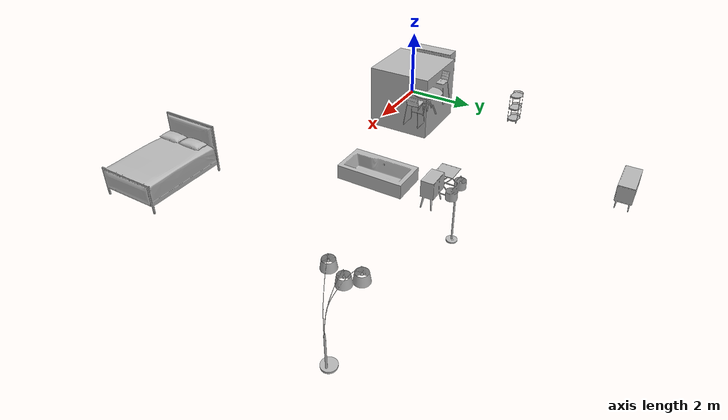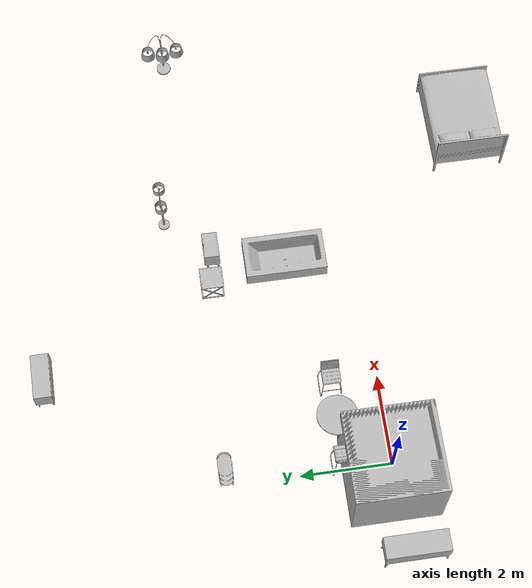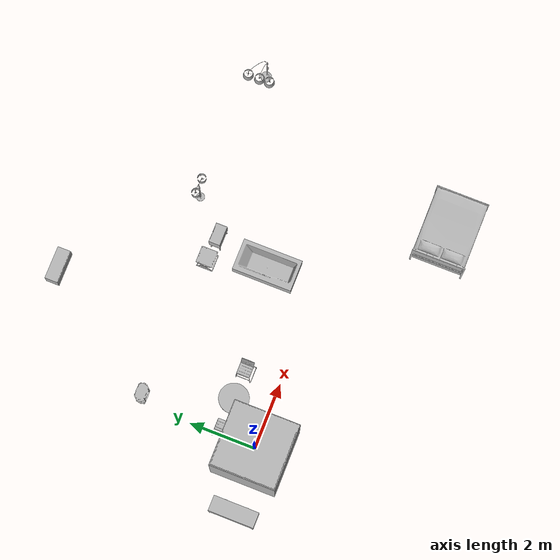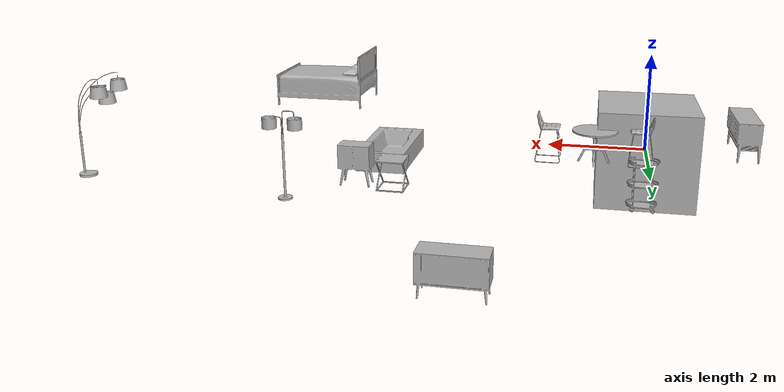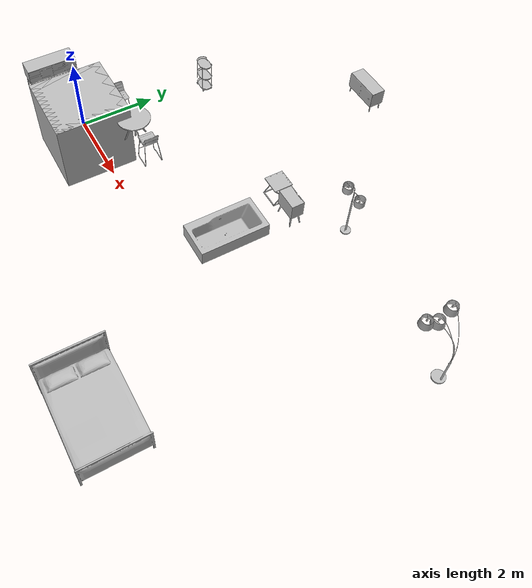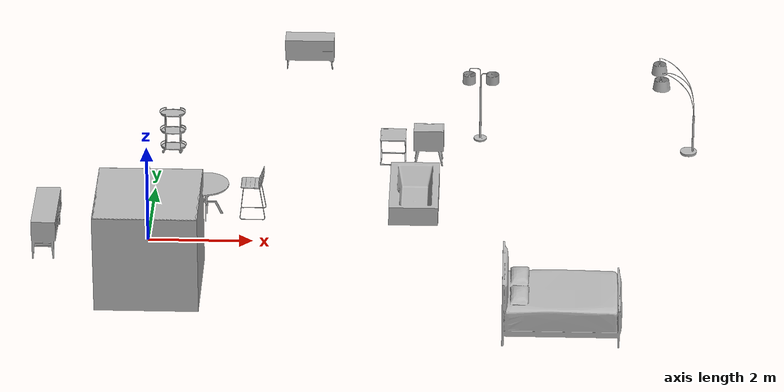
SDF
<sdf version="1.6">
 <world name="generation_yfdsbr0fpx9p_world_20">
  <include><uri>model://sun</uri></include>
  <model name="SofaTables_O1c292176b101_lod0_0">
   <include>
    <uri>model://SofaTables_O1c292176b101_lod0</uri>
    <pose>4.6000000000000005 3.300000044703484 0.0 0.0 0.0 3.14</pose>
    <static>true</static>
   </include>
  </model>
  <model name="AudioVideoMediaCabinets_O6f5c7038fb64_lod0_0">
   <include>
    <uri>model://AudioVideoMediaCabinets_O6f5c7038fb64_lod0</uri>
    <pose>2.799818027019501 7.200050470232964 0.0 0.0 0.0 0.0</pose>
    <static>true</static>
   </include>
  </model>
  <model name="Cabinets_O360d998c89e3_lod0_0">
   <include>
    <uri>model://Cabinets_O360d998c89e3_lod0</uri>
    <pose>5.299970495700837 3.2146625488996508 0.0 0.0 0.0 3.14</pose>
    <static>true</static>
   </include>
  </model>
  <model name="FloorLamps_O79dd699fb3bb_lod0_0">
   <include>
    <uri>model://FloorLamps_O79dd699fb3bb_lod0</uri>
    <pose>6.299955743551255 4.200066190958023 0.0 0.0 0.0 4.71</pose>
    <static>true</static>
   </include>
  </model>
  <model name="ServingCarts_Off3d92b2f4b7_lod0_0">
   <include>
    <uri>model://ServingCarts_Off3d92b2f4b7_lod0</uri>
    <pose>0.24999797344207764 3.550031210482121 0.0 0.0 0.0 3.14</pose>
    <static>true</static>
   </include>
  </model>
  <model name="Sideboards_O42fc94e60381_lod0_0">
   <include>
    <uri>model://Sideboards_O42fc94e60381_lod0</uri>
    <pose>-1.9534011602401735 -0.12918134182691576 0.0 0.0 0.0 1.57</pose>
    <static>true</static>
   </include>
  </model>
  <model name="DiningTables_O8655cfdbca28_lod0_0">
   <include>
    <uri>model://DiningTables_O8655cfdbca28_lod0</uri>
    <pose>1.050000923871994 1.0500000298023224 0.0 0.0 0.0 0.0</pose>
    <static>true</static>
   </include>
  </model>
  <model name="Barstools_Oa4fba5f9c131_lod0_0">
   <include>
    <uri>model://Barstools_Oa4fba5f9c131_lod0</uri>
    <pose>0.15028677284717562 1.0499698400497437 0.0 0.0 0.0 1.5700000000000003</pose>
    <static>true</static>
   </include>
  </model>
  <model name="Barstools_Oa4fba5f9c131_lod0_1">
   <include>
    <uri>model://Barstools_Oa4fba5f9c131_lod0</uri>
    <pose>1.9502867728471758 1.0499698400497437 0.0 0.0 0.0 4.71</pose>
    <static>true</static>
   </include>
  </model>
  <model name="FloorLamps_Oe4c82ba7af6_lod0_0">
   <include>
    <uri>model://FloorLamps_Oe4c82ba7af6_lod0</uri>
    <pose>10.414486372470856 3.7500271543860437 0.0 0.0 0.0 4.71</pose>
    <static>true</static>
   </include>
  </model>
  <model name="BathtubAlcove_fde1f0b038f8_lod0_0">
   <include>
    <uri>model://BathtubAlcove_fde1f0b038f8_lod0</uri>
    <pose>5.051665800809861 1.6024119019508363 0.0 0.0 0.0 1.57</pose>
    <static>true</static>
   </include>
  </model>
  <model name="Headboards_O5d185ed0fce9_lod0_0">
   <include>
    <uri>model://Headboards_O5d185ed0fce9_lod0</uri>
    <pose>7.900017046928406 -2.9477718591690065 0.0 0.0 0.0 1.57</pose>
    <static>true</static>
   </include>
  </model>
  <model name="wall_0">
   <include><uri>model://generation_yfdsbr0fpx9p_world_20/wall_0</uri><static>true</static></include>
  </model>
  <model name="wall_1">
   <include><uri>model://generation_yfdsbr0fpx9p_world_20/wall_1</uri><static>true</static></include>
  </model>
  <model name="wall_10">
   <include><uri>model://generation_yfdsbr0fpx9p_world_20/wall_10</uri><static>true</static></include>
  </model>
  <model name="wall_11">
   <include><uri>model://generation_yfdsbr0fpx9p_world_20/wall_11</uri><static>true</static></include>
  </model>
  <model name="wall_12">
   <include><uri>model://generation_yfdsbr0fpx9p_world_20/wall_12</uri><static>true</static></include>
  </model>
  <model name="wall_13">
   <include><uri>model://generation_yfdsbr0fpx9p_world_20/wall_13</uri><static>true</static></include>
  </model>
  <model name="wall_16">
   <include><uri>model://generation_yfdsbr0fpx9p_world_20/wall_16</uri><static>true</static></include>
  </model>
  <model name="wall_17">
   <include><uri>model://generation_yfdsbr0fpx9p_world_20/wall_17</uri><static>true</static></include>
  </model>
  <model name="floor_My Living Room">
   <include>
    <uri>model://generation_yfdsbr0fpx9p_world_20/floor_My Living Room</uri>
    <static>true</static>
   </include>
  </model>
  <model name="floor_Kitchen">
   <include><uri>model://generation_yfdsbr0fpx9p_world_20/floor_Kitchen</uri><static>true</static></include>
  </model>
  <model name="floor_Dining Room">
   <include><uri>model://generation_yfdsbr0fpx9p_world_20/floor_Dining Room</uri><static>true</static></include>
  </model>
  <model name="floor_Hallway">
   <include><uri>model://generation_yfdsbr0fpx9p_world_20/floor_Hallway</uri><static>true</static></include>
  </model>
  <model name="floor_Guest Bath">
   <include><uri>model://generation_yfdsbr0fpx9p_world_20/floor_Guest Bath</uri><static>true</static></include>
  </model>
  <model name="floor_Bedroom">
   <include><uri>model://generation_yfdsbr0fpx9p_world_20/floor_Bedroom</uri><static>true</static></include>
  </model>
 </world>
</sdf>

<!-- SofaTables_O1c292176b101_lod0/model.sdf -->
<sdf version="1.6">
	<model name="SofaTables_O1c292176b101_lod0">
		<link name="main_link">
			<visual name="visual_RootNode">
				<geometry>
					<mesh>
						<uri>model://SofaTables_O1c292176b101_lod0/meshes/visual_RootNode.dae</uri>
					</mesh>
				</geometry>
			</visual>
			<collision name="collision_RootNode_lod0_0">
				<geometry>
					<mesh>
						<uri>model://SofaTables_O1c292176b101_lod0/meshes/collision_RootNode_lod0_0.dae</uri>
					</mesh>
				</geometry>
			</collision>
		</link>
	</model>
</sdf>

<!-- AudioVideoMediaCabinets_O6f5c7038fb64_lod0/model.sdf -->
<sdf version="1.6">
	<model name="AudioVideoMediaCabinets_O6f5c7038fb64_lod0">
		<link name="main_link">
			<visual name="visual_RootNode">
				<geometry>
					<mesh>
						<uri>model://AudioVideoMediaCabinets_O6f5c7038fb64_lod0/meshes/visual_RootNode.dae</uri>
					</mesh>
				</geometry>
			</visual>
			<collision name="collision_RootNode_lod0_0">
				<geometry>
					<mesh>
						<uri>model://AudioVideoMediaCabinets_O6f5c7038fb64_lod0/meshes/collision_RootNode_lod0_0.dae</uri>
					</mesh>
				</geometry>
			</collision>
		</link>
	</model>
</sdf>

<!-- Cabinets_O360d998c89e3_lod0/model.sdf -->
<sdf version="1.6">
	<model name="Cabinets_O360d998c89e3_lod0">
		<link name="main_link">
			<visual name="visual_RootNode">
				<geometry>
					<mesh>
						<uri>model://Cabinets_O360d998c89e3_lod0/meshes/visual_RootNode.dae</uri>
					</mesh>
				</geometry>
			</visual>
			<collision name="collision_RootNode_lod0_0">
				<geometry>
					<mesh>
						<uri>model://Cabinets_O360d998c89e3_lod0/meshes/collision_RootNode_lod0_0.dae</uri>
					</mesh>
				</geometry>
			</collision>
		</link>
	</model>
</sdf>

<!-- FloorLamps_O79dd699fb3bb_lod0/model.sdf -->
<sdf version="1.6">
	<model name="FloorLamps_O79dd699fb3bb_lod0">
		<link name="main_link">
			<visual name="visual_RootNode">
				<geometry>
					<mesh>
						<uri>model://FloorLamps_O79dd699fb3bb_lod0/meshes/visual_RootNode.dae</uri>
					</mesh>
				</geometry>
			</visual>
			<collision name="collision_RootNode_lod0_0">
				<geometry>
					<mesh>
						<uri>model://FloorLamps_O79dd699fb3bb_lod0/meshes/collision_RootNode_lod0_0.dae</uri>
					</mesh>
				</geometry>
			</collision>
		</link>
	</model>
</sdf>

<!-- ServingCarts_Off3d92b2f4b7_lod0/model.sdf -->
<sdf version="1.6">
	<model name="ServingCarts_Off3d92b2f4b7_lod0">
		<link name="main_link">
			<visual name="visual_RootNode">
				<geometry>
					<mesh>
						<uri>model://ServingCarts_Off3d92b2f4b7_lod0/meshes/visual_RootNode.dae</uri>
					</mesh>
				</geometry>
			</visual>
			<collision name="collision_RootNode_lod0_0">
				<geometry>
					<mesh>
						<uri>model://ServingCarts_Off3d92b2f4b7_lod0/meshes/collision_RootNode_lod0_0.dae</uri>
					</mesh>
				</geometry>
			</collision>
		</link>
	</model>
</sdf>

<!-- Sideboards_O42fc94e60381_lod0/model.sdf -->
<sdf version="1.6">
	<model name="Sideboards_O42fc94e60381_lod0">
		<link name="main_link">
			<visual name="visual_RootNode">
				<geometry>
					<mesh>
						<uri>model://Sideboards_O42fc94e60381_lod0/meshes/visual_RootNode.dae</uri>
					</mesh>
				</geometry>
			</visual>
			<collision name="collision_RootNode_lod0_0">
				<geometry>
					<mesh>
						<uri>model://Sideboards_O42fc94e60381_lod0/meshes/collision_RootNode_lod0_0.dae</uri>
					</mesh>
				</geometry>
			</collision>
		</link>
	</model>
</sdf>

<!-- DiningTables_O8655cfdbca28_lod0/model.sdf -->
<sdf version="1.6">
	<model name="DiningTables_O8655cfdbca28_lod0">
		<link name="main_link">
			<visual name="visual_RootNode">
				<geometry>
					<mesh>
						<uri>model://DiningTables_O8655cfdbca28_lod0/meshes/visual_RootNode.dae</uri>
					</mesh>
				</geometry>
			</visual>
			<collision name="collision_RootNode_lod0_0">
				<geometry>
					<mesh>
						<uri>model://DiningTables_O8655cfdbca28_lod0/meshes/collision_RootNode_lod0_0.dae</uri>
					</mesh>
				</geometry>
			</collision>
		</link>
	</model>
</sdf>

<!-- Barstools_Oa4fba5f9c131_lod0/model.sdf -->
<sdf version="1.6">
	<model name="Barstools_Oa4fba5f9c131_lod0">
		<link name="main_link">
			<visual name="visual_RootNode">
				<geometry>
					<mesh>
						<uri>model://Barstools_Oa4fba5f9c131_lod0/meshes/visual_RootNode.dae</uri>
					</mesh>
				</geometry>
			</visual>
			<collision name="collision_RootNode_lod0_0">
				<geometry>
					<mesh>
						<uri>model://Barstools_Oa4fba5f9c131_lod0/meshes/collision_RootNode_lod0_0.dae</uri>
					</mesh>
				</geometry>
			</collision>
		</link>
	</model>
</sdf>

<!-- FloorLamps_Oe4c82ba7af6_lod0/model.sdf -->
<sdf version="1.6">
	<model name="FloorLamps_Oe4c82ba7af6_lod0">
		<link name="main_link">
			<visual name="visual_RootNode">
				<geometry>
					<mesh>
						<uri>model://FloorLamps_Oe4c82ba7af6_lod0/meshes/visual_RootNode.dae</uri>
					</mesh>
				</geometry>
			</visual>
			<collision name="collision_RootNode_lod0_0">
				<geometry>
					<mesh>
						<uri>model://FloorLamps_Oe4c82ba7af6_lod0/meshes/collision_RootNode_lod0_0.dae</uri>
					</mesh>
				</geometry>
			</collision>
		</link>
	</model>
</sdf>

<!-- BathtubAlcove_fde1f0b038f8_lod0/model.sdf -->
<sdf version='1.6'>
  <model name='02_BathtubAlcove'>
    <link name='body'>
	  <inertial>
        <mass>55</mass>
        <pose frame=''>0 0 0 0 0 0</pose>
        <inertia>
          <ixx>3.9893333</ixx>
          <ixy>0</ixy>
          <ixz>0</ixz>
          <iyy>15.906</iyy>
          <iyz>0</iyz>
          <izz>17.783333</izz>
        </inertia>
      </inertial>
      <pose frame=''>0 0 0 0 -0 0</pose>
      <self_collide>0</self_collide>
      <kinematic>0</kinematic>
      <gravity>1</gravity>
      <visual name='visual'>
        <geometry>
          <mesh>
            <uri>model://BathtubAlcove_fde1f0b038f8_lod0/meshes/visual_LowPoly_02_BathtubAlcove.dae</uri>
          </mesh>
        </geometry>
		<meta> <layer> 1 </layer></meta>
      </visual>
      <collision name='collision_0'>
        <laser_retro>0</laser_retro>
        <max_contacts>10</max_contacts>
        <pose frame=''>0 0 0 0 -0 0</pose>
        <geometry>
          <mesh>
            <uri>model://BathtubAlcove_fde1f0b038f8_lod0/meshes/collision_02_BathtubAlcove.dae</uri>
            <scale>1 1 1</scale>
          </mesh>
        </geometry>
		<surface>
          <friction>
            <ode>
              <mu>0.6</mu>
              <mu2>0.6</mu2>
              <fdir1>0 0 0</fdir1>
              <slip1>0</slip1>
              <slip2>0</slip2>
            </ode>
            <torsional>
              <coefficient>1</coefficient>
              <patch_radius>0</patch_radius>
              <surface_radius>0</surface_radius>
              <use_patch_radius>1</use_patch_radius>
              <ode>
                <slip>0</slip>
              </ode>
            </torsional>
          </friction>
        </surface>
      </collision>
    </link>
    <static>true</static>
  </model>
</sdf>

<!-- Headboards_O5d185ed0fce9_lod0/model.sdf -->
<sdf version="1.6">
	<model name="Headboards_O5d185ed0fce9_lod0">
		<link name="main_link">
			<visual name="visual_RootNode">
				<geometry>
					<mesh>
						<uri>model://Headboards_O5d185ed0fce9_lod0/meshes/visual_RootNode.dae</uri>
					</mesh>
				</geometry>
			</visual>
			<collision name="collision_RootNode_lod0_0">
				<geometry>
					<mesh>
						<uri>model://Headboards_O5d185ed0fce9_lod0/meshes/collision_RootNode_lod0_0.dae</uri>
					</mesh>
				</geometry>
			</collision>
		</link>
	</model>
</sdf>

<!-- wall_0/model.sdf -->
<sdf version="1.6">
  <model name="wall_0">
    <static>true</static>
    <link name="link">
      <collision name="collision">
        <pose>0 0 0 0 0 0</pose>
        <geometry>
          <mesh>
            <uri>model://generation_yfdsbr0fpx9p_world_20/wall_0/meshes/wall_0.dae</uri>
            <scale>1 1 1</scale>
          </mesh>
        </geometry>
      </collision>
      <visual name="visual">
        <meta>
          <layer>0</layer>
        </meta>
        <pose>0 0 0 0 0 0</pose>
        <geometry>
          <mesh>
            <uri>model://generation_yfdsbr0fpx9p_world_20/wall_0/meshes/wall_0.dae</uri>
            <scale>1 1 1</scale>
          </mesh>
        </geometry>
      </visual>
    </link>
  </model>
</sdf>

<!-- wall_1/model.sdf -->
<sdf version="1.6">
  <model name="wall_1">
    <static>true</static>
    <link name="link">
      <collision name="collision">
        <pose>0 0 0 0 0 0</pose>
        <geometry>
          <mesh>
            <uri>model://generation_yfdsbr0fpx9p_world_20/wall_1/meshes/wall_1.dae</uri>
            <scale>1 1 1</scale>
          </mesh>
        </geometry>
      </collision>
      <visual name="visual">
        <meta>
          <layer>0</layer>
        </meta>
        <pose>0 0 0 0 0 0</pose>
        <geometry>
          <mesh>
            <uri>model://generation_yfdsbr0fpx9p_world_20/wall_1/meshes/wall_1.dae</uri>
            <scale>1 1 1</scale>
          </mesh>
        </geometry>
      </visual>
    </link>
  </model>
</sdf>

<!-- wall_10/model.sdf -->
<sdf version="1.6">
  <model name="wall_10">
    <static>true</static>
    <link name="link">
      <collision name="collision">
        <pose>0 0 0 0 0 0</pose>
        <geometry>
          <mesh>
            <uri>model://generation_yfdsbr0fpx9p_world_20/wall_10/meshes/wall_10.dae</uri>
            <scale>1 1 1</scale>
          </mesh>
        </geometry>
      </collision>
      <visual name="visual">
        <meta>
          <layer>0</layer>
        </meta>
        <pose>0 0 0 0 0 0</pose>
        <geometry>
          <mesh>
            <uri>model://generation_yfdsbr0fpx9p_world_20/wall_10/meshes/wall_10.dae</uri>
            <scale>1 1 1</scale>
          </mesh>
        </geometry>
      </visual>
    </link>
  </model>
</sdf>

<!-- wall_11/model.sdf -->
<sdf version="1.6">
  <model name="wall_11">
    <static>true</static>
    <link name="link">
      <collision name="collision">
        <pose>0 0 0 0 0 0</pose>
        <geometry>
          <mesh>
            <uri>model://generation_yfdsbr0fpx9p_world_20/wall_11/meshes/wall_11.dae</uri>
            <scale>1 1 1</scale>
          </mesh>
        </geometry>
      </collision>
      <visual name="visual">
        <meta>
          <layer>0</layer>
        </meta>
        <pose>0 0 0 0 0 0</pose>
        <geometry>
          <mesh>
            <uri>model://generation_yfdsbr0fpx9p_world_20/wall_11/meshes/wall_11.dae</uri>
            <scale>1 1 1</scale>
          </mesh>
        </geometry>
      </visual>
    </link>
  </model>
</sdf>

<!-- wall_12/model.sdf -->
<sdf version="1.6">
  <model name="wall_12">
    <static>true</static>
    <link name="link">
      <collision name="collision">
        <pose>0 0 0 0 0 0</pose>
        <geometry>
          <mesh>
            <uri>model://generation_yfdsbr0fpx9p_world_20/wall_12/meshes/wall_12.dae</uri>
            <scale>1 1 1</scale>
          </mesh>
        </geometry>
      </collision>
      <visual name="visual">
        <meta>
          <layer>0</layer>
        </meta>
        <pose>0 0 0 0 0 0</pose>
        <geometry>
          <mesh>
            <uri>model://generation_yfdsbr0fpx9p_world_20/wall_12/meshes/wall_12.dae</uri>
            <scale>1 1 1</scale>
          </mesh>
        </geometry>
      </visual>
    </link>
  </model>
</sdf>

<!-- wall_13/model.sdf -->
<sdf version="1.6">
  <model name="wall_13">
    <static>true</static>
    <link name="link">
      <collision name="collision">
        <pose>0 0 0 0 0 0</pose>
        <geometry>
          <mesh>
            <uri>model://generation_yfdsbr0fpx9p_world_20/wall_13/meshes/wall_13.dae</uri>
            <scale>1 1 1</scale>
          </mesh>
        </geometry>
      </collision>
      <visual name="visual">
        <meta>
          <layer>0</layer>
        </meta>
        <pose>0 0 0 0 0 0</pose>
        <geometry>
          <mesh>
            <uri>model://generation_yfdsbr0fpx9p_world_20/wall_13/meshes/wall_13.dae</uri>
            <scale>1 1 1</scale>
          </mesh>
        </geometry>
      </visual>
    </link>
  </model>
</sdf>

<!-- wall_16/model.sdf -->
<sdf version="1.6">
  <model name="wall_16">
    <static>true</static>
    <link name="link">
      <collision name="collision">
        <pose>0 0 0 0 0 0</pose>
        <geometry>
          <mesh>
            <uri>model://generation_yfdsbr0fpx9p_world_20/wall_16/meshes/wall_16.dae</uri>
            <scale>1 1 1</scale>
          </mesh>
        </geometry>
      </collision>
      <visual name="visual">
        <meta>
          <layer>0</layer>
        </meta>
        <pose>0 0 0 0 0 0</pose>
        <geometry>
          <mesh>
            <uri>model://generation_yfdsbr0fpx9p_world_20/wall_16/meshes/wall_16.dae</uri>
            <scale>1 1 1</scale>
          </mesh>
        </geometry>
      </visual>
    </link>
  </model>
</sdf>

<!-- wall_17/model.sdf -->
<sdf version="1.6">
  <model name="wall_17">
    <static>true</static>
    <link name="link">
      <collision name="collision">
        <pose>0 0 0 0 0 0</pose>
        <geometry>
          <mesh>
            <uri>model://generation_yfdsbr0fpx9p_world_20/wall_17/meshes/wall_17.dae</uri>
            <scale>1 1 1</scale>
          </mesh>
        </geometry>
      </collision>
      <visual name="visual">
        <meta>
          <layer>0</layer>
        </meta>
        <pose>0 0 0 0 0 0</pose>
        <geometry>
          <mesh>
            <uri>model://generation_yfdsbr0fpx9p_world_20/wall_17/meshes/wall_17.dae</uri>
            <scale>1 1 1</scale>
          </mesh>
        </geometry>
      </visual>
    </link>
  </model>
</sdf>

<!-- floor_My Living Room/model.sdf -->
<sdf version="1.6">
  <model name="floor_My Living Room">
    <static>true</static>
    <link name="link">
      <collision name="collision">
        <pose>0 0 0 0 0 0</pose>
        <geometry>
          <mesh>
            <uri>model://generation_yfdsbr0fpx9p_world_20/floor_My Living Room/meshes/floor_My Living Room.dae</uri>
            <scale>1 1 1</scale>
          </mesh>
        </geometry>
      </collision>
      <visual name="visual">
        <meta>
          <layer>0</layer>
        </meta>
        <pose>0 0 0 0 0 0</pose>
        <geometry>
          <mesh>
            <uri>model://generation_yfdsbr0fpx9p_world_20/floor_My Living Room/meshes/floor_My Living Room.dae</uri>
            <scale>1 1 1</scale>
          </mesh>
        </geometry>
      </visual>
    </link>
  </model>
</sdf>

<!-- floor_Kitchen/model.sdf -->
<sdf version="1.6">
  <model name="floor_Kitchen">
    <static>true</static>
    <link name="link">
      <collision name="collision">
        <pose>0 0 0 0 0 0</pose>
        <geometry>
          <mesh>
            <uri>model://generation_yfdsbr0fpx9p_world_20/floor_Kitchen/meshes/floor_Kitchen.dae</uri>
            <scale>1 1 1</scale>
          </mesh>
        </geometry>
      </collision>
      <visual name="visual">
        <meta>
          <layer>0</layer>
        </meta>
        <pose>0 0 0 0 0 0</pose>
        <geometry>
          <mesh>
            <uri>model://generation_yfdsbr0fpx9p_world_20/floor_Kitchen/meshes/floor_Kitchen.dae</uri>
            <scale>1 1 1</scale>
          </mesh>
        </geometry>
      </visual>
    </link>
  </model>
</sdf>

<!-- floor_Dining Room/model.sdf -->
<sdf version="1.6">
  <model name="floor_Dining Room">
    <static>true</static>
    <link name="link">
      <collision name="collision">
        <pose>0 0 0 0 0 0</pose>
        <geometry>
          <mesh>
            <uri>model://generation_yfdsbr0fpx9p_world_20/floor_Dining Room/meshes/floor_Dining Room.dae</uri>
            <scale>1 1 1</scale>
          </mesh>
        </geometry>
      </collision>
      <visual name="visual">
        <meta>
          <layer>0</layer>
        </meta>
        <pose>0 0 0 0 0 0</pose>
        <geometry>
          <mesh>
            <uri>model://generation_yfdsbr0fpx9p_world_20/floor_Dining Room/meshes/floor_Dining Room.dae</uri>
            <scale>1 1 1</scale>
          </mesh>
        </geometry>
      </visual>
    </link>
  </model>
</sdf>

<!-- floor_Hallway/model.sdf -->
<sdf version="1.6">
  <model name="floor_Hallway">
    <static>true</static>
    <link name="link">
      <collision name="collision">
        <pose>0 0 0 0 0 0</pose>
        <geometry>
          <mesh>
            <uri>model://generation_yfdsbr0fpx9p_world_20/floor_Hallway/meshes/floor_Hallway.dae</uri>
            <scale>1 1 1</scale>
          </mesh>
        </geometry>
      </collision>
      <visual name="visual">
        <meta>
          <layer>0</layer>
        </meta>
        <pose>0 0 0 0 0 0</pose>
        <geometry>
          <mesh>
            <uri>model://generation_yfdsbr0fpx9p_world_20/floor_Hallway/meshes/floor_Hallway.dae</uri>
            <scale>1 1 1</scale>
          </mesh>
        </geometry>
      </visual>
    </link>
  </model>
</sdf>

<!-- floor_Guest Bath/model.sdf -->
<sdf version="1.6">
  <model name="floor_Guest Bath">
    <static>true</static>
    <link name="link">
      <collision name="collision">
        <pose>0 0 0 0 0 0</pose>
        <geometry>
          <mesh>
            <uri>model://generation_yfdsbr0fpx9p_world_20/floor_Guest Bath/meshes/floor_Guest Bath.dae</uri>
            <scale>1 1 1</scale>
          </mesh>
        </geometry>
      </collision>
      <visual name="visual">
        <meta>
          <layer>0</layer>
        </meta>
        <pose>0 0 0 0 0 0</pose>
        <geometry>
          <mesh>
            <uri>model://generation_yfdsbr0fpx9p_world_20/floor_Guest Bath/meshes/floor_Guest Bath.dae</uri>
            <scale>1 1 1</scale>
          </mesh>
        </geometry>
      </visual>
    </link>
  </model>
</sdf>

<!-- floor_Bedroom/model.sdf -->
<sdf version="1.6">
  <model name="floor_Bedroom">
    <static>true</static>
    <link name="link">
      <collision name="collision">
        <pose>0 0 0 0 0 0</pose>
        <geometry>
          <mesh>
            <uri>model://generation_yfdsbr0fpx9p_world_20/floor_Bedroom/meshes/floor_Bedroom.dae</uri>
            <scale>1 1 1</scale>
          </mesh>
        </geometry>
      </collision>
      <visual name="visual">
        <meta>
          <layer>0</layer>
        </meta>
        <pose>0 0 0 0 0 0</pose>
        <geometry>
          <mesh>
            <uri>model://generation_yfdsbr0fpx9p_world_20/floor_Bedroom/meshes/floor_Bedroom.dae</uri>
            <scale>1 1 1</scale>
          </mesh>
        </geometry>
      </visual>
    </link>
  </model>
</sdf>
